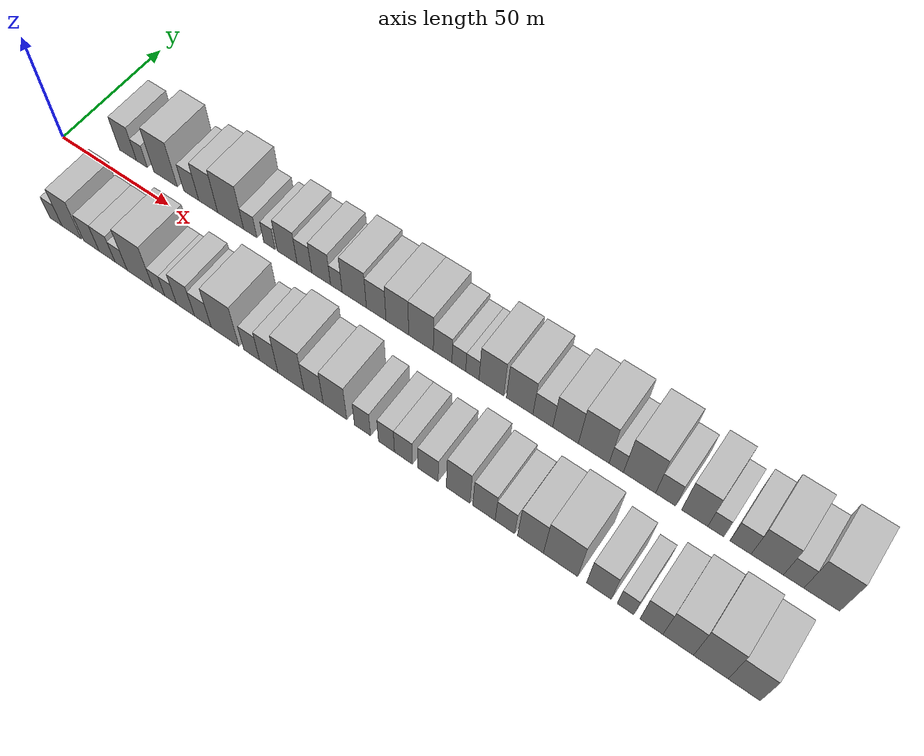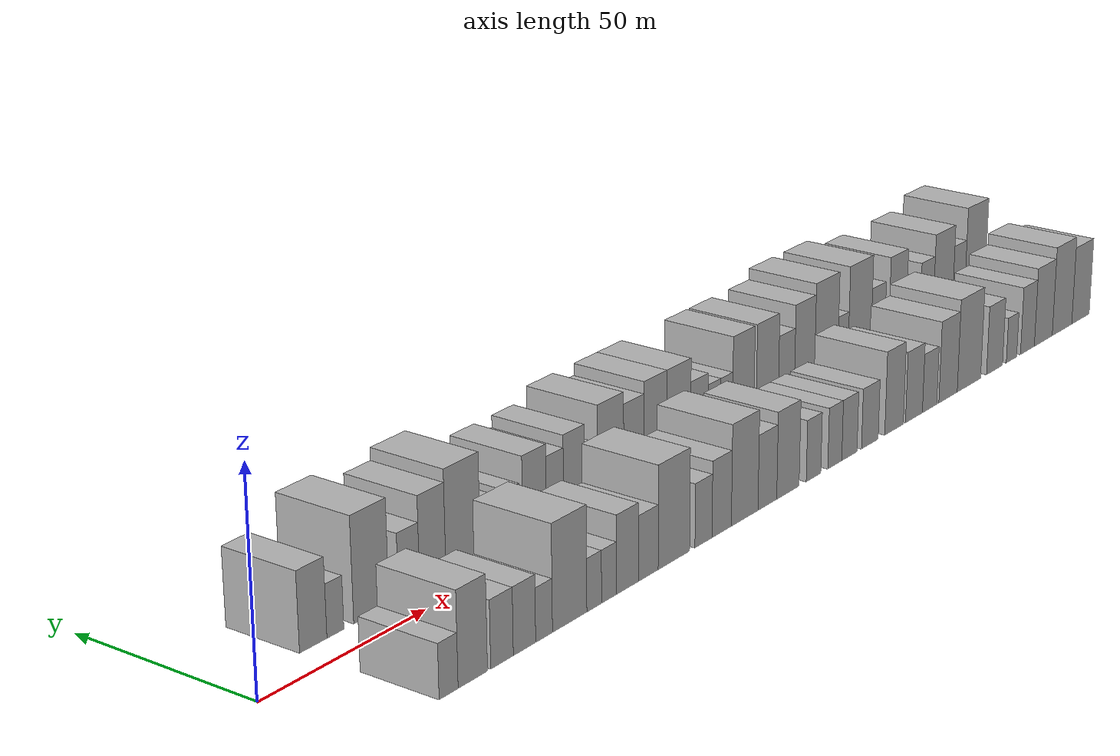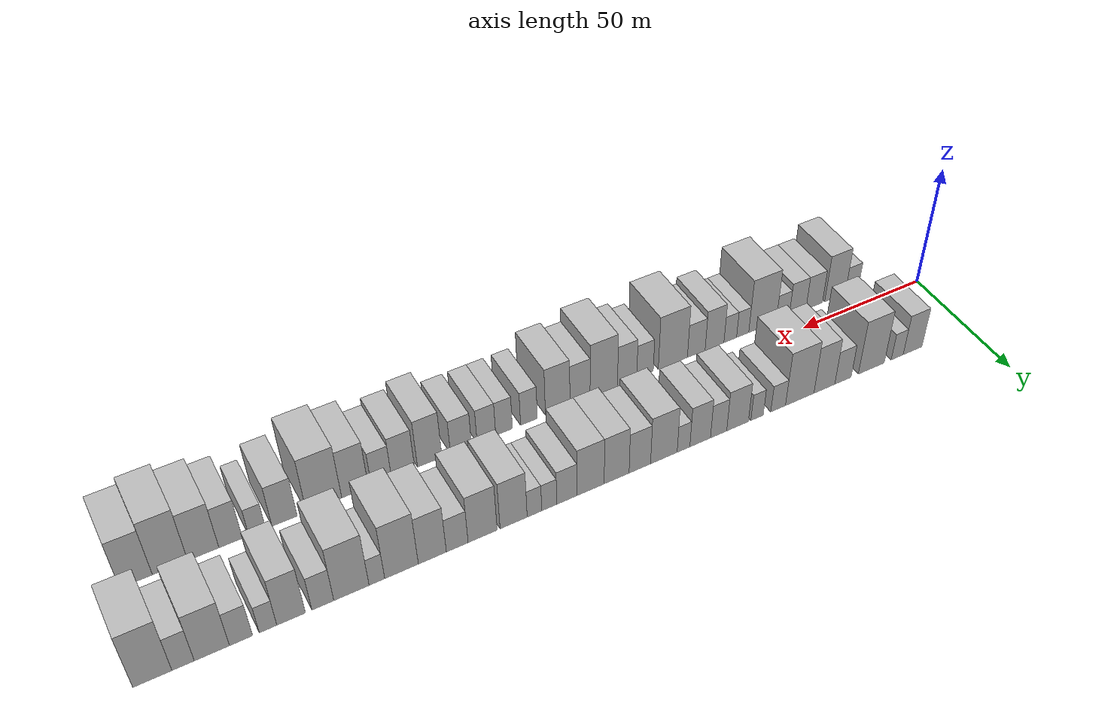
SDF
<sdf version="1.6">
 <world name="default">
  <scene>
   <sky><clouds><speed>12</speed></clouds></sky>
   <ambient>0.4 0.4 0.4 1</ambient>
   <background>0.7 0.7 0.7 1</background>
   <shadows>1</shadows>
  </scene>
  <gravity>0 0 -9.8066</gravity>
  <magnetic_field>6e-06 2.3e-05 -4.2e-05</magnetic_field>
  <physics default="0" name="default_physics" type="ode">
   <ode>
    <solver>
     <type>quick</type>
     <iters>10</iters>
     <sor>1.0</sor>
     <use_dynamic_moi_rescaling>0</use_dynamic_moi_rescaling>
    </solver>
    <constraints>
     <cfm>0</cfm>
     <erp>0.2</erp>
     <contact_max_correcting_vel>100</contact_max_correcting_vel>
     <contact_surface_layer>0.001</contact_surface_layer>
    </constraints>
   </ode>
   <max_step_size>0.004</max_step_size>
   <real_time_factor>1</real_time_factor>
   <real_time_update_rate>250</real_time_update_rate>
  </physics>
  <light name="sun" type="directional">
   <pose>0 0 10 0 0 0</pose>
   <diffuse>0.8 0.8 0.8 1</diffuse>
   <specular>0.2 0.2 0.2 1</specular>
   <attenuation>
    <range>1000</range>
    <constant>0.9</constant>
    <linear>0.01</linear>
    <quadratic>0.001</quadratic>
   </attenuation>
   <direction>-0.5 0.1 -0.9</direction>
  </light>
  <model name="building_1">
   <static>1</static>
   <pose>24.0578 17.5000 0 0.000000 0.000000 1.570796</pose>
   <link name="link">
    <pose>0 0 9.00 0 0 0</pose>
    <collision name="collision"><geometry><box><size>20.0000 8.1157 18.0000</size></box></geometry></collision>
    <visual name="visual">
     <cast_shadows>0</cast_shadows>
     <geometry><box><size>20.0000 8.1157 18.0000</size></box></geometry>
     <material>
      <script>
       <uri>model://HANNAS_wall/materials/scripts</uri>
       <uri>model://HANNAS_wall/materials/textures</uri>
       <name>vrc/HANNAS_wall</name>
      </script>
     </material>
    </visual>
   </link>
  </model>
  <model name="building_2">
   <static>1</static>
   <pose>30.6641 17.5000 0 0.000000 0.000000 1.570796</pose>
   <link name="link">
    <pose>0 0 6.00 0 0 0</pose>
    <collision name="collision"><geometry><box><size>20.0000 5.0968 12.0000</size></box></geometry></collision>
    <visual name="visual">
     <cast_shadows>0</cast_shadows>
     <geometry><box><size>20.0000 5.0968 12.0000</size></box></geometry>
     <material>
      <script>
       <uri>model://HANNAS_wall/materials/scripts</uri>
       <uri>model://HANNAS_wall/materials/textures</uri>
       <name>vrc/HANNAS_wall</name>
      </script>
     </material>
    </visual>
   </link>
  </model>
  <model name="building_3">
   <static>1</static>
   <pose>41.6855 17.5000 0 0.000000 0.000000 1.570796</pose>
   <link name="link">
    <pose>0 0 12.00 0 0 0</pose>
    <collision name="collision"><geometry><box><size>20.0000 10.9459 24.0000</size></box></geometry></collision>
    <visual name="visual">
     <cast_shadows>0</cast_shadows>
     <geometry><box><size>20.0000 10.9459 24.0000</size></box></geometry>
     <material>
      <script>
       <uri>model://HANNAS_wall/materials/scripts</uri>
       <uri>model://HANNAS_wall/materials/textures</uri>
       <name>vrc/HANNAS_wall</name>
      </script>
     </material>
    </visual>
   </link>
  </model>
  <model name="building_4">
   <static>1</static>
   <pose>53.5565 17.5000 0 0.000000 0.000000 1.570796</pose>
   <link name="link">
    <pose>0 0 7.50 0 0 0</pose>
    <collision name="collision"><geometry><box><size>20.0000 6.7962 15.0000</size></box></geometry></collision>
    <visual name="visual">
     <cast_shadows>0</cast_shadows>
     <geometry><box><size>20.0000 6.7962 15.0000</size></box></geometry>
     <material>
      <script>
       <uri>model://HANNAS_wall/materials/scripts</uri>
       <uri>model://HANNAS_wall/materials/textures</uri>
       <name>vrc/HANNAS_wall</name>
      </script>
     </material>
    </visual>
   </link>
  </model>
  <model name="building_5">
   <static>1</static>
   <pose>61.2372 17.5000 0 0.000000 0.000000 1.570796</pose>
   <link name="link">
    <pose>0 0 10.50 0 0 0</pose>
    <collision name="collision"><geometry><box><size>20.0000 8.5654 21.0000</size></box></geometry></collision>
    <visual name="visual">
     <cast_shadows>0</cast_shadows>
     <geometry><box><size>20.0000 8.5654 21.0000</size></box></geometry>
     <material>
      <script>
       <uri>model://HANNAS_wall/materials/scripts</uri>
       <uri>model://HANNAS_wall/materials/textures</uri>
       <name>vrc/HANNAS_wall</name>
      </script>
     </material>
    </visual>
   </link>
  </model>
  <model name="building_6">
   <static>1</static>
   <pose>71.2785 17.5000 0 0.000000 0.000000 1.570796</pose>
   <link name="link">
    <pose>0 0 12.00 0 0 0</pose>
    <collision name="collision"><geometry><box><size>20.0000 11.5171 24.0000</size></box></geometry></collision>
    <visual name="visual">
     <cast_shadows>0</cast_shadows>
     <geometry><box><size>20.0000 11.5171 24.0000</size></box></geometry>
     <material>
      <script>
       <uri>model://HANNAS_wall/materials/scripts</uri>
       <uri>model://HANNAS_wall/materials/textures</uri>
       <name>vrc/HANNAS_wall</name>
      </script>
     </material>
    </visual>
   </link>
  </model>
  <model name="building_7">
   <static>1</static>
   <pose>79.9645 17.5000 0 0.000000 0.000000 1.570796</pose>
   <link name="link">
    <pose>0 0 6.00 0 0 0</pose>
    <collision name="collision"><geometry><box><size>20.0000 5.8551 12.0000</size></box></geometry></collision>
    <visual name="visual">
     <cast_shadows>0</cast_shadows>
     <geometry><box><size>20.0000 5.8551 12.0000</size></box></geometry>
     <material>
      <script>
       <uri>model://HANNAS_wall/materials/scripts</uri>
       <uri>model://HANNAS_wall/materials/textures</uri>
       <name>vrc/HANNAS_wall</name>
      </script>
     </material>
    </visual>
   </link>
  </model>
  <model name="building_8">
   <static>1</static>
   <pose>88.3252 17.5000 0 0.000000 0.000000 1.570796</pose>
   <link name="link">
    <pose>0 0 6.00 0 0 0</pose>
    <collision name="collision"><geometry><box><size>20.0000 4.8661 12.0000</size></box></geometry></collision>
    <visual name="visual">
     <cast_shadows>0</cast_shadows>
     <geometry><box><size>20.0000 4.8661 12.0000</size></box></geometry>
     <material>
      <script>
       <uri>model://HANNAS_wall/materials/scripts</uri>
       <uri>model://HANNAS_wall/materials/textures</uri>
       <name>vrc/HANNAS_wall</name>
      </script>
     </material>
    </visual>
   </link>
  </model>
  <model name="building_9">
   <static>1</static>
   <pose>95.9812 17.5000 0 0.000000 0.000000 1.570796</pose>
   <link name="link">
    <pose>0 0 9.00 0 0 0</pose>
    <collision name="collision"><geometry><box><size>20.0000 8.4461 18.0000</size></box></geometry></collision>
    <visual name="visual">
     <cast_shadows>0</cast_shadows>
     <geometry><box><size>20.0000 8.4461 18.0000</size></box></geometry>
     <material>
      <script>
       <uri>model://HANNAS_wall/materials/scripts</uri>
       <uri>model://HANNAS_wall/materials/textures</uri>
       <name>vrc/HANNAS_wall</name>
      </script>
     </material>
    </visual>
   </link>
  </model>
  <model name="building_10">
   <static>1</static>
   <pose>103.3351 17.5000 0 0.000000 0.000000 1.570796</pose>
   <link name="link">
    <pose>0 0 7.50 0 0 0</pose>
    <collision name="collision"><geometry><box><size>20.0000 6.2617 15.0000</size></box></geometry></collision>
    <visual name="visual">
     <cast_shadows>0</cast_shadows>
     <geometry><box><size>20.0000 6.2617 15.0000</size></box></geometry>
     <material>
      <script>
       <uri>model://HANNAS_wall/materials/scripts</uri>
       <uri>model://HANNAS_wall/materials/textures</uri>
       <name>vrc/HANNAS_wall</name>
      </script>
     </material>
    </visual>
   </link>
  </model>
  <model name="building_11">
   <static>1</static>
   <pose>110.3977 17.5000 0 0.000000 0.000000 1.570796</pose>
   <link name="link">
    <pose>0 0 9.00 0 0 0</pose>
    <collision name="collision"><geometry><box><size>20.0000 7.8634 18.0000</size></box></geometry></collision>
    <visual name="visual">
     <cast_shadows>0</cast_shadows>
     <geometry><box><size>20.0000 7.8634 18.0000</size></box></geometry>
     <material>
      <script>
       <uri>model://HANNAS_wall/materials/scripts</uri>
       <uri>model://HANNAS_wall/materials/textures</uri>
       <name>vrc/HANNAS_wall</name>
      </script>
     </material>
    </visual>
   </link>
  </model>
  <model name="building_12">
   <static>1</static>
   <pose>116.7347 17.5000 0 0.000000 0.000000 1.570796</pose>
   <link name="link">
    <pose>0 0 6.00 0 0 0</pose>
    <collision name="collision"><geometry><box><size>20.0000 4.8106 12.0000</size></box></geometry></collision>
    <visual name="visual">
     <cast_shadows>0</cast_shadows>
     <geometry><box><size>20.0000 4.8106 12.0000</size></box></geometry>
     <material>
      <script>
       <uri>model://HANNAS_wall/materials/scripts</uri>
       <uri>model://HANNAS_wall/materials/textures</uri>
       <name>vrc/HANNAS_wall</name>
      </script>
     </material>
    </visual>
   </link>
  </model>
  <model name="building_13">
   <static>1</static>
   <pose>124.1107 17.5000 0 0.000000 0.000000 1.570796</pose>
   <link name="link">
    <pose>0 0 10.50 0 0 0</pose>
    <collision name="collision"><geometry><box><size>20.0000 9.9415 21.0000</size></box></geometry></collision>
    <visual name="visual">
     <cast_shadows>0</cast_shadows>
     <geometry><box><size>20.0000 9.9415 21.0000</size></box></geometry>
     <material>
      <script>
       <uri>model://HANNAS_wall/materials/scripts</uri>
       <uri>model://HANNAS_wall/materials/textures</uri>
       <name>vrc/HANNAS_wall</name>
      </script>
     </material>
    </visual>
   </link>
  </model>
  <model name="building_14">
   <static>1</static>
   <pose>133.0465 17.5000 0 0.000000 0.000000 1.570796</pose>
   <link name="link">
    <pose>0 0 9.00 0 0 0</pose>
    <collision name="collision"><geometry><box><size>20.0000 7.9301 18.0000</size></box></geometry></collision>
    <visual name="visual">
     <cast_shadows>0</cast_shadows>
     <geometry><box><size>20.0000 7.9301 18.0000</size></box></geometry>
     <material>
      <script>
       <uri>model://HANNAS_wall/materials/scripts</uri>
       <uri>model://HANNAS_wall/materials/textures</uri>
       <name>vrc/HANNAS_wall</name>
      </script>
     </material>
    </visual>
   </link>
  </model>
  <model name="building_15">
   <static>1</static>
   <pose>141.5483 17.5000 0 0.000000 0.000000 1.570796</pose>
   <link name="link">
    <pose>0 0 10.50 0 0 0</pose>
    <collision name="collision"><geometry><box><size>20.0000 9.0734 21.0000</size></box></geometry></collision>
    <visual name="visual">
     <cast_shadows>0</cast_shadows>
     <geometry><box><size>20.0000 9.0734 21.0000</size></box></geometry>
     <material>
      <script>
       <uri>model://HANNAS_wall/materials/scripts</uri>
       <uri>model://HANNAS_wall/materials/textures</uri>
       <name>vrc/HANNAS_wall</name>
      </script>
     </material>
    </visual>
   </link>
  </model>
  <model name="building_16">
   <static>1</static>
   <pose>150.9359 17.5000 0 0.000000 0.000000 1.570796</pose>
   <link name="link">
    <pose>0 0 10.50 0 0 0</pose>
    <collision name="collision"><geometry><box><size>20.0000 9.7018 21.0000</size></box></geometry></collision>
    <visual name="visual">
     <cast_shadows>0</cast_shadows>
     <geometry><box><size>20.0000 9.7018 21.0000</size></box></geometry>
     <material>
      <script>
       <uri>model://HANNAS_wall/materials/scripts</uri>
       <uri>model://HANNAS_wall/materials/textures</uri>
       <name>vrc/HANNAS_wall</name>
      </script>
     </material>
    </visual>
   </link>
  </model>
  <model name="building_17">
   <static>1</static>
   <pose>159.3956 17.5000 0 0.000000 0.000000 1.570796</pose>
   <link name="link">
    <pose>0 0 7.50 0 0 0</pose>
    <collision name="collision"><geometry><box><size>20.0000 7.2177 15.0000</size></box></geometry></collision>
    <visual name="visual">
     <cast_shadows>0</cast_shadows>
     <geometry><box><size>20.0000 7.2177 15.0000</size></box></geometry>
     <material>
      <script>
       <uri>model://HANNAS_wall/materials/scripts</uri>
       <uri>model://HANNAS_wall/materials/textures</uri>
       <name>vrc/HANNAS_wall</name>
      </script>
     </material>
    </visual>
   </link>
  </model>
  <model name="building_18">
   <static>1</static>
   <pose>165.6512 17.5000 0 0.000000 0.000000 1.570796</pose>
   <link name="link">
    <pose>0 0 6.00 0 0 0</pose>
    <collision name="collision"><geometry><box><size>20.0000 5.2935 12.0000</size></box></geometry></collision>
    <visual name="visual">
     <cast_shadows>0</cast_shadows>
     <geometry><box><size>20.0000 5.2935 12.0000</size></box></geometry>
     <material>
      <script>
       <uri>model://HANNAS_wall/materials/scripts</uri>
       <uri>model://HANNAS_wall/materials/textures</uri>
       <name>vrc/HANNAS_wall</name>
      </script>
     </material>
    </visual>
   </link>
  </model>
  <model name="building_19">
   <static>1</static>
   <pose>170.8365 17.5000 0 0.000000 0.000000 1.570796</pose>
   <link name="link">
    <pose>0 0 6.00 0 0 0</pose>
    <collision name="collision"><geometry><box><size>20.0000 5.0772 12.0000</size></box></geometry></collision>
    <visual name="visual">
     <cast_shadows>0</cast_shadows>
     <geometry><box><size>20.0000 5.0772 12.0000</size></box></geometry>
     <material>
      <script>
       <uri>model://HANNAS_wall/materials/scripts</uri>
       <uri>model://HANNAS_wall/materials/textures</uri>
       <name>vrc/HANNAS_wall</name>
      </script>
     </material>
    </visual>
   </link>
  </model>
  <model name="building_20">
   <static>1</static>
   <pose>178.0342 17.5000 0 0.000000 0.000000 1.570796</pose>
   <link name="link">
    <pose>0 0 10.50 0 0 0</pose>
    <collision name="collision"><geometry><box><size>20.0000 9.3181 21.0000</size></box></geometry></collision>
    <visual name="visual">
     <cast_shadows>0</cast_shadows>
     <geometry><box><size>20.0000 9.3181 21.0000</size></box></geometry>
     <material>
      <script>
       <uri>model://HANNAS_wall/materials/scripts</uri>
       <uri>model://HANNAS_wall/materials/textures</uri>
       <name>vrc/HANNAS_wall</name>
      </script>
     </material>
    </visual>
   </link>
  </model>
  <model name="building_21">
   <static>1</static>
   <pose>188.6076 17.5000 0 0.000000 0.000000 1.570796</pose>
   <link name="link">
    <pose>0 0 10.50 0 0 0</pose>
    <collision name="collision"><geometry><box><size>20.0000 9.8288 21.0000</size></box></geometry></collision>
    <visual name="visual">
     <cast_shadows>0</cast_shadows>
     <geometry><box><size>20.0000 9.8288 21.0000</size></box></geometry>
     <material>
      <script>
       <uri>model://HANNAS_wall/materials/scripts</uri>
       <uri>model://HANNAS_wall/materials/textures</uri>
       <name>vrc/HANNAS_wall</name>
      </script>
     </material>
    </visual>
   </link>
  </model>
  <model name="building_22">
   <static>1</static>
   <pose>197.1594 17.5000 0 0.000000 0.000000 1.570796</pose>
   <link name="link">
    <pose>0 0 7.50 0 0 0</pose>
    <collision name="collision"><geometry><box><size>20.0000 7.2749 15.0000</size></box></geometry></collision>
    <visual name="visual">
     <cast_shadows>0</cast_shadows>
     <geometry><box><size>20.0000 7.2749 15.0000</size></box></geometry>
     <material>
      <script>
       <uri>model://HANNAS_wall/materials/scripts</uri>
       <uri>model://HANNAS_wall/materials/textures</uri>
       <name>vrc/HANNAS_wall</name>
      </script>
     </material>
    </visual>
   </link>
  </model>
  <model name="building_23">
   <static>1</static>
   <pose>205.4156 17.5000 0 0.000000 0.000000 1.570796</pose>
   <link name="link">
    <pose>0 0 10.50 0 0 0</pose>
    <collision name="collision"><geometry><box><size>20.0000 9.2373 21.0000</size></box></geometry></collision>
    <visual name="visual">
     <cast_shadows>0</cast_shadows>
     <geometry><box><size>20.0000 9.2373 21.0000</size></box></geometry>
     <material>
      <script>
       <uri>model://HANNAS_wall/materials/scripts</uri>
       <uri>model://HANNAS_wall/materials/textures</uri>
       <name>vrc/HANNAS_wall</name>
      </script>
     </material>
    </visual>
   </link>
  </model>
  <model name="building_24">
   <static>1</static>
   <pose>215.4934 17.5000 0 0.000000 0.000000 1.570796</pose>
   <link name="link">
    <pose>0 0 12.00 0 0 0</pose>
    <collision name="collision"><geometry><box><size>20.0000 10.9183 24.0000</size></box></geometry></collision>
    <visual name="visual">
     <cast_shadows>0</cast_shadows>
     <geometry><box><size>20.0000 10.9183 24.0000</size></box></geometry>
     <material>
      <script>
       <uri>model://HANNAS_wall/materials/scripts</uri>
       <uri>model://HANNAS_wall/materials/textures</uri>
       <name>vrc/HANNAS_wall</name>
      </script>
     </material>
    </visual>
   </link>
  </model>
  <model name="building_25">
   <static>1</static>
   <pose>223.4560 17.5000 0 0.000000 0.000000 1.570796</pose>
   <link name="link">
    <pose>0 0 6.00 0 0 0</pose>
    <collision name="collision"><geometry><box><size>20.0000 5.0069 12.0000</size></box></geometry></collision>
    <visual name="visual">
     <cast_shadows>0</cast_shadows>
     <geometry><box><size>20.0000 5.0069 12.0000</size></box></geometry>
     <material>
      <script>
       <uri>model://HANNAS_wall/materials/scripts</uri>
       <uri>model://HANNAS_wall/materials/textures</uri>
       <name>vrc/HANNAS_wall</name>
      </script>
     </material>
    </visual>
   </link>
  </model>
  <model name="building_26">
   <static>1</static>
   <pose>231.5347 17.5000 0 0.000000 0.000000 1.570796</pose>
   <link name="link">
    <pose>0 0 12.00 0 0 0</pose>
    <collision name="collision"><geometry><box><size>20.0000 11.1506 24.0000</size></box></geometry></collision>
    <visual name="visual">
     <cast_shadows>0</cast_shadows>
     <geometry><box><size>20.0000 11.1506 24.0000</size></box></geometry>
     <material>
      <script>
       <uri>model://HANNAS_wall/materials/scripts</uri>
       <uri>model://HANNAS_wall/materials/textures</uri>
       <name>vrc/HANNAS_wall</name>
      </script>
     </material>
    </visual>
   </link>
  </model>
  <model name="building_27">
   <static>1</static>
   <pose>240.5277 17.5000 0 0.000000 0.000000 1.570796</pose>
   <link name="link">
    <pose>0 0 7.50 0 0 0</pose>
    <collision name="collision"><geometry><box><size>20.0000 6.8353 15.0000</size></box></geometry></collision>
    <visual name="visual">
     <cast_shadows>0</cast_shadows>
     <geometry><box><size>20.0000 6.8353 15.0000</size></box></geometry>
     <material>
      <script>
       <uri>model://HANNAS_wall/materials/scripts</uri>
       <uri>model://HANNAS_wall/materials/textures</uri>
       <name>vrc/HANNAS_wall</name>
      </script>
     </material>
    </visual>
   </link>
  </model>
  <model name="building_28">
   <static>1</static>
   <pose>250.3241 17.5000 0 0.000000 0.000000 1.570796</pose>
   <link name="link">
    <pose>0 0 10.50 0 0 0</pose>
    <collision name="collision"><geometry><box><size>20.0000 8.7576 21.0000</size></box></geometry></collision>
    <visual name="visual">
     <cast_shadows>0</cast_shadows>
     <geometry><box><size>20.0000 8.7576 21.0000</size></box></geometry>
     <material>
      <script>
       <uri>model://HANNAS_wall/materials/scripts</uri>
       <uri>model://HANNAS_wall/materials/textures</uri>
       <name>vrc/HANNAS_wall</name>
      </script>
     </material>
    </visual>
   </link>
  </model>
  <model name="building_29">
   <static>1</static>
   <pose>257.3588 17.5000 0 0.000000 0.000000 1.570796</pose>
   <link name="link">
    <pose>0 0 6.00 0 0 0</pose>
    <collision name="collision"><geometry><box><size>20.0000 5.3117 12.0000</size></box></geometry></collision>
    <visual name="visual">
     <cast_shadows>0</cast_shadows>
     <geometry><box><size>20.0000 5.3117 12.0000</size></box></geometry>
     <material>
      <script>
       <uri>model://HANNAS_wall/materials/scripts</uri>
       <uri>model://HANNAS_wall/materials/textures</uri>
       <name>vrc/HANNAS_wall</name>
      </script>
     </material>
    </visual>
   </link>
  </model>
  <model name="building_30">
   <static>1</static>
   <pose>265.4738 17.5000 0 0.000000 0.000000 1.570796</pose>
   <link name="link">
    <pose>0 0 7.50 0 0 0</pose>
    <collision name="collision"><geometry><box><size>20.0000 6.9183 15.0000</size></box></geometry></collision>
    <visual name="visual">
     <cast_shadows>0</cast_shadows>
     <geometry><box><size>20.0000 6.9183 15.0000</size></box></geometry>
     <material>
      <script>
       <uri>model://HANNAS_wall/materials/scripts</uri>
       <uri>model://HANNAS_wall/materials/textures</uri>
       <name>vrc/HANNAS_wall</name>
      </script>
     </material>
    </visual>
   </link>
  </model>
  <model name="building_31">
   <static>1</static>
   <pose>274.1179 17.5000 0 0.000000 0.000000 1.570796</pose>
   <link name="link">
    <pose>0 0 10.50 0 0 0</pose>
    <collision name="collision"><geometry><box><size>20.0000 10.3699 21.0000</size></box></geometry></collision>
    <visual name="visual">
     <cast_shadows>0</cast_shadows>
     <geometry><box><size>20.0000 10.3699 21.0000</size></box></geometry>
     <material>
      <script>
       <uri>model://HANNAS_wall/materials/scripts</uri>
       <uri>model://HANNAS_wall/materials/textures</uri>
       <name>vrc/HANNAS_wall</name>
      </script>
     </material>
    </visual>
   </link>
  </model>
  <model name="building_32">
   <static>1</static>
   <pose>282.5498 17.5000 0 0.000000 0.000000 1.570796</pose>
   <link name="link">
    <pose>0 0 7.50 0 0 0</pose>
    <collision name="collision"><geometry><box><size>20.0000 6.4940 15.0000</size></box></geometry></collision>
    <visual name="visual">
     <cast_shadows>0</cast_shadows>
     <geometry><box><size>20.0000 6.4940 15.0000</size></box></geometry>
     <material>
      <script>
       <uri>model://HANNAS_wall/materials/scripts</uri>
       <uri>model://HANNAS_wall/materials/textures</uri>
       <name>vrc/HANNAS_wall</name>
      </script>
     </material>
    </visual>
   </link>
  </model>
  <model name="building_33">
   <static>1</static>
   <pose>291.4009 17.5000 0 0.000000 0.000000 1.570796</pose>
   <link name="link">
    <pose>0 0 12.00 0 0 0</pose>
    <collision name="collision"><geometry><box><size>20.0000 11.2081 24.0000</size></box></geometry></collision>
    <visual name="visual">
     <cast_shadows>0</cast_shadows>
     <geometry><box><size>20.0000 11.2081 24.0000</size></box></geometry>
     <material>
      <script>
       <uri>model://HANNAS_wall/materials/scripts</uri>
       <uri>model://HANNAS_wall/materials/textures</uri>
       <name>vrc/HANNAS_wall</name>
      </script>
     </material>
    </visual>
   </link>
  </model>
  <model name="building_34">
   <static>1</static>
   <pose>23.8735 -17.5000 0 0.000000 0.000000 1.570796</pose>
   <link name="link">
    <pose>0 0 6.00 0 0 0</pose>
    <collision name="collision"><geometry><box><size>20.0000 5.7471 12.0000</size></box></geometry></collision>
    <visual name="visual">
     <cast_shadows>0</cast_shadows>
     <geometry><box><size>20.0000 5.7471 12.0000</size></box></geometry>
     <material>
      <script>
       <uri>model://HANNAS_wall/materials/scripts</uri>
       <uri>model://HANNAS_wall/materials/textures</uri>
       <name>vrc/HANNAS_wall</name>
      </script>
     </material>
    </visual>
   </link>
  </model>
  <model name="building_35">
   <static>1</static>
   <pose>31.2713 -17.5000 0 0.000000 0.000000 1.570796</pose>
   <link name="link">
    <pose>0 0 10.50 0 0 0</pose>
    <collision name="collision"><geometry><box><size>20.0000 9.0483 21.0000</size></box></geometry></collision>
    <visual name="visual">
     <cast_shadows>0</cast_shadows>
     <geometry><box><size>20.0000 9.0483 21.0000</size></box></geometry>
     <material>
      <script>
       <uri>model://HANNAS_wall/materials/scripts</uri>
       <uri>model://HANNAS_wall/materials/textures</uri>
       <name>vrc/HANNAS_wall</name>
      </script>
     </material>
    </visual>
   </link>
  </model>
  <model name="building_36">
   <static>1</static>
   <pose>40.3777 -17.5000 0 0.000000 0.000000 1.570796</pose>
   <link name="link">
    <pose>0 0 7.50 0 0 0</pose>
    <collision name="collision"><geometry><box><size>20.0000 7.1645 15.0000</size></box></geometry></collision>
    <visual name="visual">
     <cast_shadows>0</cast_shadows>
     <geometry><box><size>20.0000 7.1645 15.0000</size></box></geometry>
     <material>
      <script>
       <uri>model://HANNAS_wall/materials/scripts</uri>
       <uri>model://HANNAS_wall/materials/textures</uri>
       <name>vrc/HANNAS_wall</name>
      </script>
     </material>
    </visual>
   </link>
  </model>
  <model name="building_37">
   <static>1</static>
   <pose>47.5649 -17.5000 0 0.000000 0.000000 1.570796</pose>
   <link name="link">
    <pose>0 0 7.50 0 0 0</pose>
    <collision name="collision"><geometry><box><size>20.0000 7.2100 15.0000</size></box></geometry></collision>
    <visual name="visual">
     <cast_shadows>0</cast_shadows>
     <geometry><box><size>20.0000 7.2100 15.0000</size></box></geometry>
     <material>
      <script>
       <uri>model://HANNAS_wall/materials/scripts</uri>
       <uri>model://HANNAS_wall/materials/textures</uri>
       <name>vrc/HANNAS_wall</name>
      </script>
     </material>
    </visual>
   </link>
  </model>
  <model name="building_38">
   <static>1</static>
   <pose>53.9277 -17.5000 0 0.000000 0.000000 1.570796</pose>
   <link name="link">
    <pose>0 0 6.00 0 0 0</pose>
    <collision name="collision"><geometry><box><size>20.0000 5.5156 12.0000</size></box></geometry></collision>
    <visual name="visual">
     <cast_shadows>0</cast_shadows>
     <geometry><box><size>20.0000 5.5156 12.0000</size></box></geometry>
     <material>
      <script>
       <uri>model://HANNAS_wall/materials/scripts</uri>
       <uri>model://HANNAS_wall/materials/textures</uri>
       <name>vrc/HANNAS_wall</name>
      </script>
     </material>
    </visual>
   </link>
  </model>
  <model name="building_39">
   <static>1</static>
   <pose>62.4632 -17.5000 0 0.000000 0.000000 1.570796</pose>
   <link name="link">
    <pose>0 0 12.00 0 0 0</pose>
    <collision name="collision"><geometry><box><size>20.0000 11.5554 24.0000</size></box></geometry></collision>
    <visual name="visual">
     <cast_shadows>0</cast_shadows>
     <geometry><box><size>20.0000 11.5554 24.0000</size></box></geometry>
     <material>
      <script>
       <uri>model://HANNAS_wall/materials/scripts</uri>
       <uri>model://HANNAS_wall/materials/textures</uri>
       <name>vrc/HANNAS_wall</name>
      </script>
     </material>
    </visual>
   </link>
  </model>
  <model name="building_40">
   <static>1</static>
   <pose>70.7656 -17.5000 0 0.000000 0.000000 1.570796</pose>
   <link name="link">
    <pose>0 0 6.00 0 0 0</pose>
    <collision name="collision"><geometry><box><size>20.0000 5.0493 12.0000</size></box></geometry></collision>
    <visual name="visual">
     <cast_shadows>0</cast_shadows>
     <geometry><box><size>20.0000 5.0493 12.0000</size></box></geometry>
     <material>
      <script>
       <uri>model://HANNAS_wall/materials/scripts</uri>
       <uri>model://HANNAS_wall/materials/textures</uri>
       <name>vrc/HANNAS_wall</name>
      </script>
     </material>
    </visual>
   </link>
  </model>
  <model name="building_41">
   <static>1</static>
   <pose>75.9027 -17.5000 0 0.000000 0.000000 1.570796</pose>
   <link name="link">
    <pose>0 0 6.00 0 0 0</pose>
    <collision name="collision"><geometry><box><size>20.0000 5.2249 12.0000</size></box></geometry></collision>
    <visual name="visual">
     <cast_shadows>0</cast_shadows>
     <geometry><box><size>20.0000 5.2249 12.0000</size></box></geometry>
     <material>
      <script>
       <uri>model://HANNAS_wall/materials/scripts</uri>
       <uri>model://HANNAS_wall/materials/textures</uri>
       <name>vrc/HANNAS_wall</name>
      </script>
     </material>
    </visual>
   </link>
  </model>
  <model name="building_42">
   <static>1</static>
   <pose>82.3749 -17.5000 0 0.000000 0.000000 1.570796</pose>
   <link name="link">
    <pose>0 0 9.00 0 0 0</pose>
    <collision name="collision"><geometry><box><size>20.0000 7.7195 18.0000</size></box></geometry></collision>
    <visual name="visual">
     <cast_shadows>0</cast_shadows>
     <geometry><box><size>20.0000 7.7195 18.0000</size></box></geometry>
     <material>
      <script>
       <uri>model://HANNAS_wall/materials/scripts</uri>
       <uri>model://HANNAS_wall/materials/textures</uri>
       <name>vrc/HANNAS_wall</name>
      </script>
     </material>
    </visual>
   </link>
  </model>
  <model name="building_43">
   <static>1</static>
   <pose>89.8142 -17.5000 0 0.000000 0.000000 1.570796</pose>
   <link name="link">
    <pose>0 0 7.50 0 0 0</pose>
    <collision name="collision"><geometry><box><size>20.0000 7.1592 15.0000</size></box></geometry></collision>
    <visual name="visual">
     <cast_shadows>0</cast_shadows>
     <geometry><box><size>20.0000 7.1592 15.0000</size></box></geometry>
     <material>
      <script>
       <uri>model://HANNAS_wall/materials/scripts</uri>
       <uri>model://HANNAS_wall/materials/textures</uri>
       <name>vrc/HANNAS_wall</name>
      </script>
     </material>
    </visual>
   </link>
  </model>
  <model name="building_44">
   <static>1</static>
   <pose>99.2130 -17.5000 0 0.000000 0.000000 1.570796</pose>
   <link name="link">
    <pose>0 0 12.00 0 0 0</pose>
    <collision name="collision"><geometry><box><size>20.0000 11.6384 24.0000</size></box></geometry></collision>
    <visual name="visual">
     <cast_shadows>0</cast_shadows>
     <geometry><box><size>20.0000 11.6384 24.0000</size></box></geometry>
     <material>
      <script>
       <uri>model://HANNAS_wall/materials/scripts</uri>
       <uri>model://HANNAS_wall/materials/textures</uri>
       <name>vrc/HANNAS_wall</name>
      </script>
     </material>
    </visual>
   </link>
  </model>
  <model name="building_45">
   <static>1</static>
   <pose>110.2833 -17.5000 0 0.000000 0.000000 1.570796</pose>
   <link name="link">
    <pose>0 0 7.50 0 0 0</pose>
    <collision name="collision"><geometry><box><size>20.0000 6.5022 15.0000</size></box></geometry></collision>
    <visual name="visual">
     <cast_shadows>0</cast_shadows>
     <geometry><box><size>20.0000 6.5022 15.0000</size></box></geometry>
     <material>
      <script>
       <uri>model://HANNAS_wall/materials/scripts</uri>
       <uri>model://HANNAS_wall/materials/textures</uri>
       <name>vrc/HANNAS_wall</name>
      </script>
     </material>
    </visual>
   </link>
  </model>
  <model name="building_46">
   <static>1</static>
   <pose>117.2811 -17.5000 0 0.000000 0.000000 1.570796</pose>
   <link name="link">
    <pose>0 0 9.00 0 0 0</pose>
    <collision name="collision"><geometry><box><size>20.0000 7.4935 18.0000</size></box></geometry></collision>
    <visual name="visual">
     <cast_shadows>0</cast_shadows>
     <geometry><box><size>20.0000 7.4935 18.0000</size></box></geometry>
     <material>
      <script>
       <uri>model://HANNAS_wall/materials/scripts</uri>
       <uri>model://HANNAS_wall/materials/textures</uri>
       <name>vrc/HANNAS_wall</name>
      </script>
     </material>
    </visual>
   </link>
  </model>
  <model name="building_47">
   <static>1</static>
   <pose>126.2986 -17.5000 0 0.000000 0.000000 1.570796</pose>
   <link name="link">
    <pose>0 0 12.00 0 0 0</pose>
    <collision name="collision"><geometry><box><size>20.0000 10.5416 24.0000</size></box></geometry></collision>
    <visual name="visual">
     <cast_shadows>0</cast_shadows>
     <geometry><box><size>20.0000 10.5416 24.0000</size></box></geometry>
     <material>
      <script>
       <uri>model://HANNAS_wall/materials/scripts</uri>
       <uri>model://HANNAS_wall/materials/textures</uri>
       <name>vrc/HANNAS_wall</name>
      </script>
     </material>
    </visual>
   </link>
  </model>
  <model name="building_48">
   <static>1</static>
   <pose>135.3681 -17.5000 0 0.000000 0.000000 1.570796</pose>
   <link name="link">
    <pose>0 0 9.00 0 0 0</pose>
    <collision name="collision"><geometry><box><size>20.0000 7.5974 18.0000</size></box></geometry></collision>
    <visual name="visual">
     <cast_shadows>0</cast_shadows>
     <geometry><box><size>20.0000 7.5974 18.0000</size></box></geometry>
     <material>
      <script>
       <uri>model://HANNAS_wall/materials/scripts</uri>
       <uri>model://HANNAS_wall/materials/textures</uri>
       <name>vrc/HANNAS_wall</name>
      </script>
     </material>
    </visual>
   </link>
  </model>
  <model name="building_49">
   <static>1</static>
   <pose>143.7889 -17.5000 0 0.000000 0.000000 1.570796</pose>
   <link name="link">
    <pose>0 0 10.50 0 0 0</pose>
    <collision name="collision"><geometry><box><size>20.0000 9.2441 21.0000</size></box></geometry></collision>
    <visual name="visual">
     <cast_shadows>0</cast_shadows>
     <geometry><box><size>20.0000 9.2441 21.0000</size></box></geometry>
     <material>
      <script>
       <uri>model://HANNAS_wall/materials/scripts</uri>
       <uri>model://HANNAS_wall/materials/textures</uri>
       <name>vrc/HANNAS_wall</name>
      </script>
     </material>
    </visual>
   </link>
  </model>
  <model name="building_50">
   <static>1</static>
   <pose>154.5050 -17.5000 0 0.000000 0.000000 1.570796</pose>
   <link name="link">
    <pose>0 0 7.50 0 0 0</pose>
    <collision name="collision"><geometry><box><size>20.0000 6.1881 15.0000</size></box></geometry></collision>
    <visual name="visual">
     <cast_shadows>0</cast_shadows>
     <geometry><box><size>20.0000 6.1881 15.0000</size></box></geometry>
     <material>
      <script>
       <uri>model://HANNAS_wall/materials/scripts</uri>
       <uri>model://HANNAS_wall/materials/textures</uri>
       <name>vrc/HANNAS_wall</name>
      </script>
     </material>
    </visual>
   </link>
  </model>
  <model name="building_51">
   <static>1</static>
   <pose>163.6264 -17.5000 0 0.000000 0.000000 1.570796</pose>
   <link name="link">
    <pose>0 0 7.50 0 0 0</pose>
    <collision name="collision"><geometry><box><size>20.0000 6.0548 15.0000</size></box></geometry></collision>
    <visual name="visual">
     <cast_shadows>0</cast_shadows>
     <geometry><box><size>20.0000 6.0548 15.0000</size></box></geometry>
     <material>
      <script>
       <uri>model://HANNAS_wall/materials/scripts</uri>
       <uri>model://HANNAS_wall/materials/textures</uri>
       <name>vrc/HANNAS_wall</name>
      </script>
     </material>
    </visual>
   </link>
  </model>
  <model name="building_52">
   <static>1</static>
   <pose>170.0151 -17.5000 0 0.000000 0.000000 1.570796</pose>
   <link name="link">
    <pose>0 0 7.50 0 0 0</pose>
    <collision name="collision"><geometry><box><size>20.0000 6.7226 15.0000</size></box></geometry></collision>
    <visual name="visual">
     <cast_shadows>0</cast_shadows>
     <geometry><box><size>20.0000 6.7226 15.0000</size></box></geometry>
     <material>
      <script>
       <uri>model://HANNAS_wall/materials/scripts</uri>
       <uri>model://HANNAS_wall/materials/textures</uri>
       <name>vrc/HANNAS_wall</name>
      </script>
     </material>
    </visual>
   </link>
  </model>
  <model name="building_53">
   <static>1</static>
   <pose>179.1234 -17.5000 0 0.000000 0.000000 1.570796</pose>
   <link name="link">
    <pose>0 0 7.50 0 0 0</pose>
    <collision name="collision"><geometry><box><size>20.0000 7.4941 15.0000</size></box></geometry></collision>
    <visual name="visual">
     <cast_shadows>0</cast_shadows>
     <geometry><box><size>20.0000 7.4941 15.0000</size></box></geometry>
     <material>
      <script>
       <uri>model://HANNAS_wall/materials/scripts</uri>
       <uri>model://HANNAS_wall/materials/textures</uri>
       <name>vrc/HANNAS_wall</name>
      </script>
     </material>
    </visual>
   </link>
  </model>
  <model name="building_54">
   <static>1</static>
   <pose>190.1580 -17.5000 0 0.000000 0.000000 1.570796</pose>
   <link name="link">
    <pose>0 0 10.50 0 0 0</pose>
    <collision name="collision"><geometry><box><size>20.0000 8.5752 21.0000</size></box></geometry></collision>
    <visual name="visual">
     <cast_shadows>0</cast_shadows>
     <geometry><box><size>20.0000 8.5752 21.0000</size></box></geometry>
     <material>
      <script>
       <uri>model://HANNAS_wall/materials/scripts</uri>
       <uri>model://HANNAS_wall/materials/textures</uri>
       <name>vrc/HANNAS_wall</name>
      </script>
     </material>
    </visual>
   </link>
  </model>
  <model name="building_55">
   <static>1</static>
   <pose>199.4403 -17.5000 0 0.000000 0.000000 1.570796</pose>
   <link name="link">
    <pose>0 0 9.00 0 0 0</pose>
    <collision name="collision"><geometry><box><size>20.0000 7.9893 18.0000</size></box></geometry></collision>
    <visual name="visual">
     <cast_shadows>0</cast_shadows>
     <geometry><box><size>20.0000 7.9893 18.0000</size></box></geometry>
     <material>
      <script>
       <uri>model://HANNAS_wall/materials/scripts</uri>
       <uri>model://HANNAS_wall/materials/textures</uri>
       <name>vrc/HANNAS_wall</name>
      </script>
     </material>
    </visual>
   </link>
  </model>
  <model name="building_56">
   <static>1</static>
   <pose>206.8735 -17.5000 0 0.000000 0.000000 1.570796</pose>
   <link name="link">
    <pose>0 0 7.50 0 0 0</pose>
    <collision name="collision"><geometry><box><size>20.0000 6.8771 15.0000</size></box></geometry></collision>
    <visual name="visual">
     <cast_shadows>0</cast_shadows>
     <geometry><box><size>20.0000 6.8771 15.0000</size></box></geometry>
     <material>
      <script>
       <uri>model://HANNAS_wall/materials/scripts</uri>
       <uri>model://HANNAS_wall/materials/textures</uri>
       <name>vrc/HANNAS_wall</name>
      </script>
     </material>
    </visual>
   </link>
  </model>
  <model name="building_57">
   <static>1</static>
   <pose>215.8058 -17.5000 0 0.000000 0.000000 1.570796</pose>
   <link name="link">
    <pose>0 0 10.50 0 0 0</pose>
    <collision name="collision"><geometry><box><size>20.0000 8.9875 21.0000</size></box></geometry></collision>
    <visual name="visual">
     <cast_shadows>0</cast_shadows>
     <geometry><box><size>20.0000 8.9875 21.0000</size></box></geometry>
     <material>
      <script>
       <uri>model://HANNAS_wall/materials/scripts</uri>
       <uri>model://HANNAS_wall/materials/textures</uri>
       <name>vrc/HANNAS_wall</name>
      </script>
     </material>
    </visual>
   </link>
  </model>
  <model name="building_58">
   <static>1</static>
   <pose>226.1525 -17.5000 0 0.000000 0.000000 1.570796</pose>
   <link name="link">
    <pose>0 0 12.00 0 0 0</pose>
    <collision name="collision"><geometry><box><size>20.0000 11.7059 24.0000</size></box></geometry></collision>
    <visual name="visual">
     <cast_shadows>0</cast_shadows>
     <geometry><box><size>20.0000 11.7059 24.0000</size></box></geometry>
     <material>
      <script>
       <uri>model://HANNAS_wall/materials/scripts</uri>
       <uri>model://HANNAS_wall/materials/textures</uri>
       <name>vrc/HANNAS_wall</name>
      </script>
     </material>
    </visual>
   </link>
  </model>
  <model name="building_59">
   <static>1</static>
   <pose>239.1162 -17.5000 0 0.000000 0.000000 1.570796</pose>
   <link name="link">
    <pose>0 0 9.00 0 0 0</pose>
    <collision name="collision"><geometry><box><size>20.0000 8.2214 18.0000</size></box></geometry></collision>
    <visual name="visual">
     <cast_shadows>0</cast_shadows>
     <geometry><box><size>20.0000 8.2214 18.0000</size></box></geometry>
     <material>
      <script>
       <uri>model://HANNAS_wall/materials/scripts</uri>
       <uri>model://HANNAS_wall/materials/textures</uri>
       <name>vrc/HANNAS_wall</name>
      </script>
     </material>
    </visual>
   </link>
  </model>
  <model name="building_60">
   <static>1</static>
   <pose>247.9426 -17.5000 0 0.000000 0.000000 1.570796</pose>
   <link name="link">
    <pose>0 0 6.00 0 0 0</pose>
    <collision name="collision"><geometry><box><size>20.0000 5.4314 12.0000</size></box></geometry></collision>
    <visual name="visual">
     <cast_shadows>0</cast_shadows>
     <geometry><box><size>20.0000 5.4314 12.0000</size></box></geometry>
     <material>
      <script>
       <uri>model://HANNAS_wall/materials/scripts</uri>
       <uri>model://HANNAS_wall/materials/textures</uri>
       <name>vrc/HANNAS_wall</name>
      </script>
     </material>
    </visual>
   </link>
  </model>
  <model name="building_61">
   <static>1</static>
   <pose>256.3738 -17.5000 0 0.000000 0.000000 1.570796</pose>
   <link name="link">
    <pose>0 0 9.00 0 0 0</pose>
    <collision name="collision"><geometry><box><size>20.0000 7.4310 18.0000</size></box></geometry></collision>
    <visual name="visual">
     <cast_shadows>0</cast_shadows>
     <geometry><box><size>20.0000 7.4310 18.0000</size></box></geometry>
     <material>
      <script>
       <uri>model://HANNAS_wall/materials/scripts</uri>
       <uri>model://HANNAS_wall/materials/textures</uri>
       <name>vrc/HANNAS_wall</name>
      </script>
     </material>
    </visual>
   </link>
  </model>
  <model name="building_62">
   <static>1</static>
   <pose>264.9609 -17.5000 0 0.000000 0.000000 1.570796</pose>
   <link name="link">
    <pose>0 0 10.50 0 0 0</pose>
    <collision name="collision"><geometry><box><size>20.0000 9.7432 21.0000</size></box></geometry></collision>
    <visual name="visual">
     <cast_shadows>0</cast_shadows>
     <geometry><box><size>20.0000 9.7432 21.0000</size></box></geometry>
     <material>
      <script>
       <uri>model://HANNAS_wall/materials/scripts</uri>
       <uri>model://HANNAS_wall/materials/textures</uri>
       <name>vrc/HANNAS_wall</name>
      </script>
     </material>
    </visual>
   </link>
  </model>
  <model name="building_63">
   <static>1</static>
   <pose>275.2447 -17.5000 0 0.000000 0.000000 1.570796</pose>
   <link name="link">
    <pose>0 0 12.00 0 0 0</pose>
    <collision name="collision"><geometry><box><size>20.0000 10.8243 24.0000</size></box></geometry></collision>
    <visual name="visual">
     <cast_shadows>0</cast_shadows>
     <geometry><box><size>20.0000 10.8243 24.0000</size></box></geometry>
     <material>
      <script>
       <uri>model://HANNAS_wall/materials/scripts</uri>
       <uri>model://HANNAS_wall/materials/textures</uri>
       <name>vrc/HANNAS_wall</name>
      </script>
     </material>
    </visual>
   </link>
  </model>
  <model name="building_64">
   <static>1</static>
   <pose>285.6054 -17.5000 0 0.000000 0.000000 1.570796</pose>
   <link name="link">
    <pose>0 0 10.50 0 0 0</pose>
    <collision name="collision"><geometry><box><size>20.0000 9.8972 21.0000</size></box></geometry></collision>
    <visual name="visual">
     <cast_shadows>0</cast_shadows>
     <geometry><box><size>20.0000 9.8972 21.0000</size></box></geometry>
     <material>
      <script>
       <uri>model://HANNAS_wall/materials/scripts</uri>
       <uri>model://HANNAS_wall/materials/textures</uri>
       <name>vrc/HANNAS_wall</name>
      </script>
     </material>
    </visual>
   </link>
  </model>
 </world>
</sdf>
